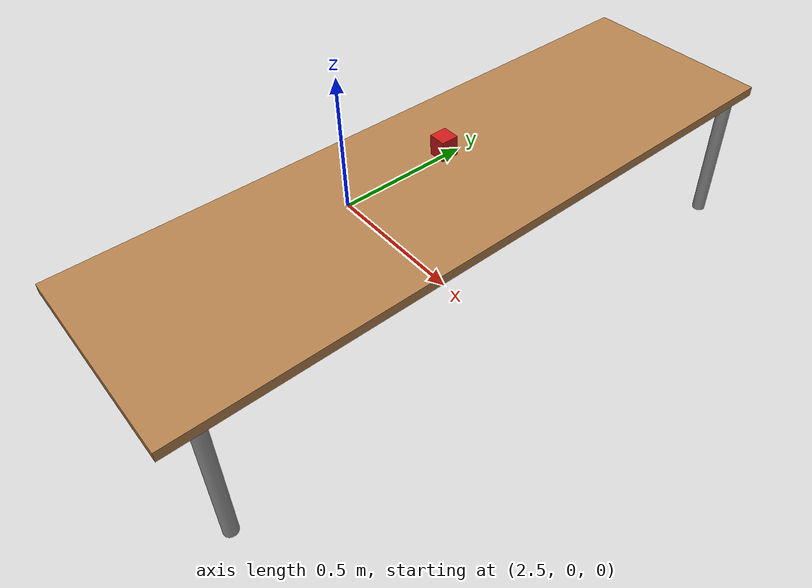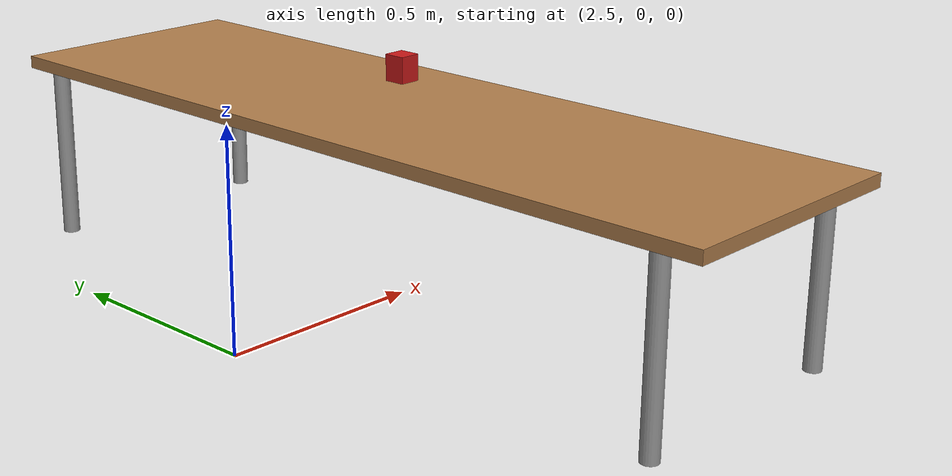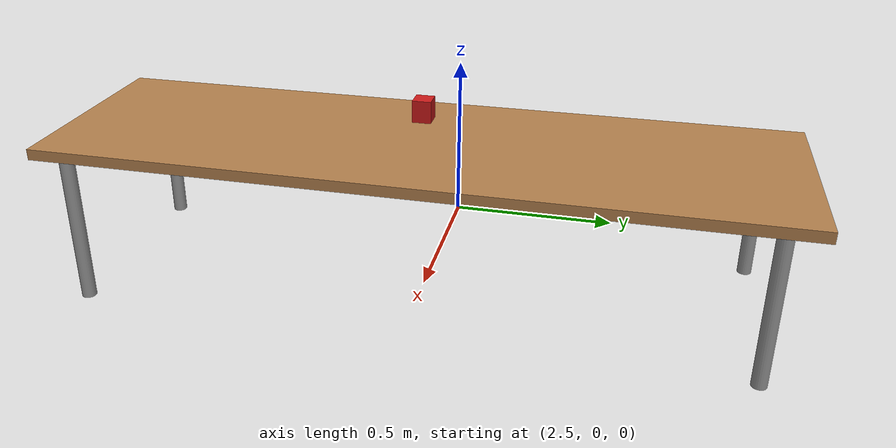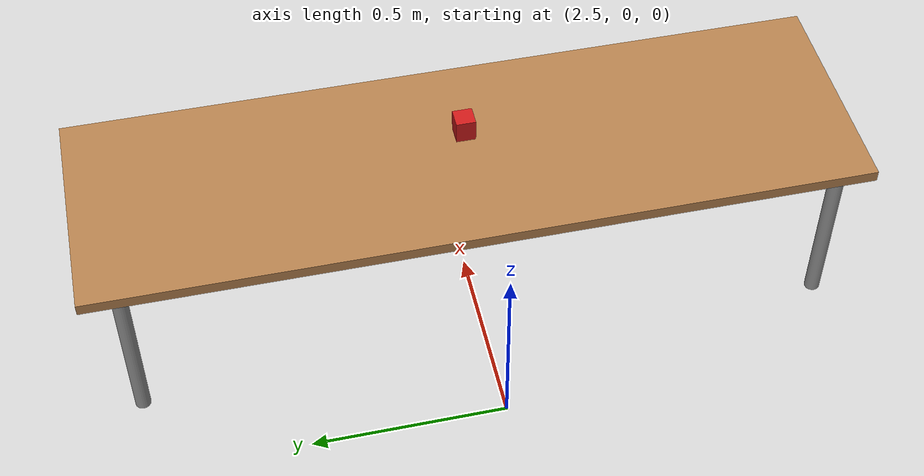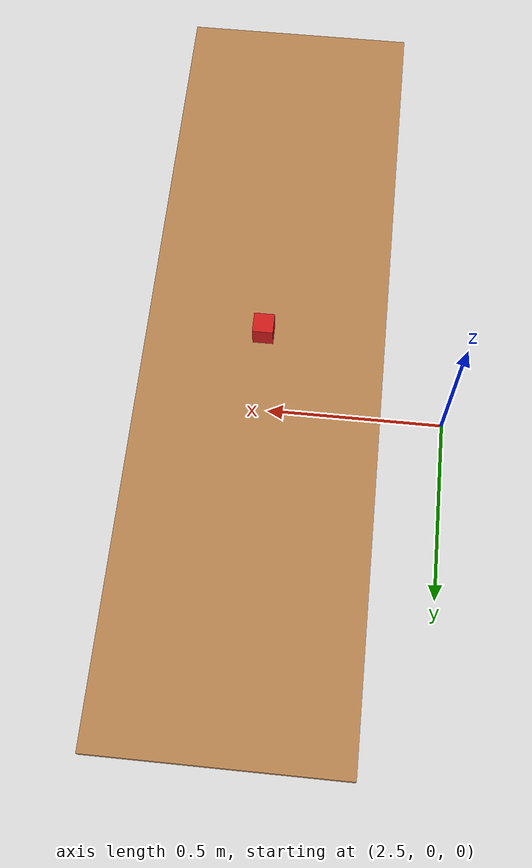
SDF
<sdf version="1.7">
 <world name="warehouse">
  <physics type="ode"><max_step_size>0.001</max_step_size><real_time_factor>1.0</real_time_factor></physics>
  <plugin name="ignition::gazebo::systems::Physics" filename="libignition-gazebo-physics-system.so"/>
  <plugin name="ignition::gazebo::systems::UserCommands" filename="libignition-gazebo-user-commands-system.so"/>
  <plugin name="ignition::gazebo::systems::SceneBroadcaster" filename="libignition-gazebo-scene-broadcaster-system.so"/>
  <plugin name="ignition::gazebo::systems::Sensors" filename="libignition-gazebo-sensors-system.so">
   <render_engine>ogre2</render_engine>
  </plugin>
  <plugin name="ignition::gazebo::systems::Imu" filename="libignition-gazebo-imu-system.so"/>
  <plugin name="ignition::gazebo::systems::NavSat" filename="libignition-gazebo-navsat-system.so"/>
  <scene>
   <ambient>1 1 1 1</ambient>
   <background>0.3 0.7 0.9 1</background>
   <shadows>0</shadows>
   <grid>false</grid>
  </scene>
  <spherical_coordinates>
   <surface_model>EARTH_WGS84</surface_model>
   <world_frame_orientation>ENU</world_frame_orientation>
   <latitude_deg>-22.986687</latitude_deg>
   <longitude_deg>-43.202501</longitude_deg>
   <elevation>0</elevation>
   <heading_deg>0</heading_deg>
  </spherical_coordinates>
  <model name="ground_plane">
   <static>true</static>
   <link name="link">
    <collision name="collision">
     <geometry><plane><normal>0.0 0.0 1</normal><size>1 1</size></plane></geometry>
    </collision>
   </link>
  </model>
  <model name="Table">
   <pose>3 0 0 0 0 1.57</pose>
   <static>true</static>
   <link name="link">
    <collision name="surface">
     <pose>0 0 0.425 0 0 0</pose>
     <geometry><box><size>2.0 0.6 0.03</size></box></geometry>
     <surface><friction><ode><mu>0.6</mu><mu2>0.6</mu2></ode></friction></surface>
    </collision>
    <visual name="visual1">
     <pose>0 0 0.425 0 0 0</pose>
     <geometry><box><size>2.0 0.6 0.03</size></box></geometry>
     <material>
      <diffuse>1.0 1.0 1.0</diffuse>
      <script><uri>file://media/materials/scripts/gazebo.material</uri><name>Gazebo/Wood</name></script>
      <pbr>
       <metal>
        <albedo_map>https://fuel.gazebosim.org/1.0/openrobotics/models/table/4/files/Table_Diffuse.jpg</albedo_map>
       </metal>
      </pbr>
     </material>
    </visual>
    <collision name="front_left_leg">
     <pose>0.9 0.28 0.205 0 0 0</pose>
     <geometry><cylinder><radius>0.02</radius><length>0.41</length></cylinder></geometry>
    </collision>
    <visual name="front_left_leg">
     <pose>0.9 0.28 0.205 0 0 0</pose>
     <geometry><cylinder><radius>0.02</radius><length>0.41</length></cylinder></geometry>
     <material>
      <diffuse>0.5 0.5 0.5</diffuse>
      <script><uri>file://media/materials/scripts/gazebo.material</uri><name>Gazebo/Grey</name></script>
     </material>
    </visual>
    <collision name="front_right_leg">
     <pose>0.9 -0.28 0.205 0 0 0</pose>
     <geometry><cylinder><radius>0.02</radius><length>0.41</length></cylinder></geometry>
    </collision>
    <visual name="front_right_leg">
     <pose>0.9 -0.28 0.205 0 0 0</pose>
     <geometry><cylinder><radius>0.02</radius><length>0.41</length></cylinder></geometry>
     <material>
      <diffuse>0.5 0.5 0.5</diffuse>
      <script><uri>file://media/materials/scripts/gazebo.material</uri><name>Gazebo/Grey</name></script>
     </material>
    </visual>
    <collision name="back_right_leg">
     <pose>-0.9 -0.28 0.205 0 0 0</pose>
     <geometry><cylinder><radius>0.02</radius><length>0.41</length></cylinder></geometry>
    </collision>
    <visual name="back_right_leg">
     <pose>-0.9 -0.28 0.205 0 0 0</pose>
     <geometry><cylinder><radius>0.02</radius><length>0.41</length></cylinder></geometry>
     <material>
      <diffuse>0.5 0.5 0.5</diffuse>
      <script><uri>file://media/materials/scripts/gazebo.material</uri><name>Gazebo/Grey</name></script>
     </material>
    </visual>
    <collision name="back_left_leg">
     <pose>-0.9 0.28 0.205 0 0 0</pose>
     <geometry><cylinder><radius>0.02</radius><length>0.41</length></cylinder></geometry>
    </collision>
    <visual name="back_left_leg">
     <pose>-0.9 0.28 0.205 0 0 0</pose>
     <geometry><cylinder><radius>0.02</radius><length>0.41</length></cylinder></geometry>
     <material>
      <diffuse>0.5 0.5 0.5</diffuse>
      <script><uri>file://media/materials/scripts/gazebo.material</uri><name>Gazebo/Grey</name></script>
     </material>
    </visual>
   </link>
  </model>
  <model name="grip_box">
   <static>false</static>
   <pose>3 0 0.53 0 0 0</pose>
   <link name="link">
    <inertial><mass>0.5</mass><inertia><ixx>0.001</ixx><iyy>0.001</iyy><izz>0.001</izz></inertia></inertial>
    <collision name="collision">
     <geometry><box><size>0.05 0.05 0.06</size></box></geometry>
     <surface><friction><ode><mu>0.5</mu><mu2>0.5</mu2></ode></friction></surface>
    </collision>
    <visual name="visual">
     <geometry><box><size>0.05 0.05 0.06</size></box></geometry>
     <material>
      <ambient>0.3 0.3 0.3 1</ambient>
      <diffuse>0.8 0.1 0.1 1</diffuse>
      <specular>0.1 0.1 0.1 1</specular>
     </material>
    </visual>
   </link>
  </model>
 </world>
</sdf>
